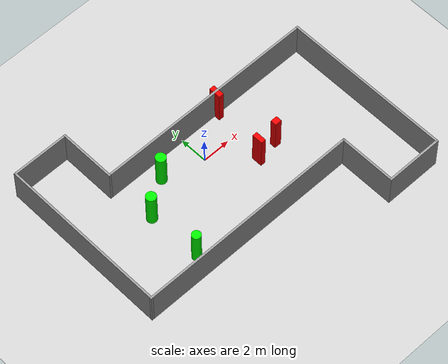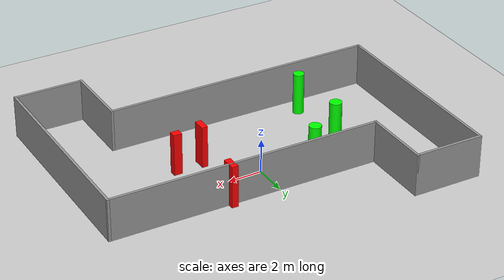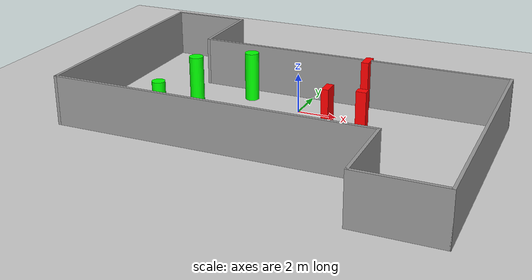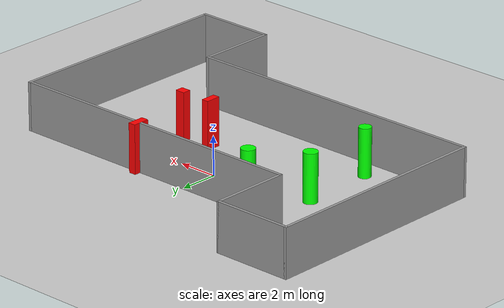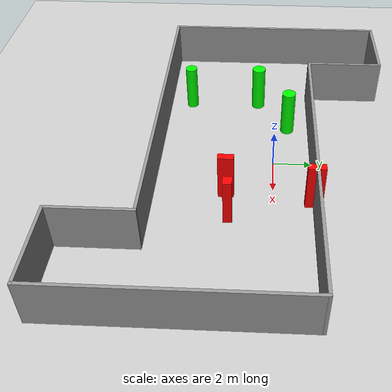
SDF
<sdf version="1.7">
 <world name="default">
  <light name="sun" type="directional">
   <pose>0 0 10 0 -0 0</pose>
   <diffuse>0.8 0.8 0.8 1</diffuse>
   <specular>0.2 0.2 0.2 1</specular>
   <attenuation>
    <range>1000</range>
    <constant>0.9</constant>
    <linear>0.01</linear>
    <quadratic>0.001</quadratic>
   </attenuation>
   <direction>-0.5 0.1 -0.9</direction>
   <spot><inner_angle>0</inner_angle><outer_angle>0</outer_angle><falloff>0</falloff></spot>
  </light>
  <model name="ground_plane">
   <static>1</static>
   <link name="link">
    <collision name="collision">
     <geometry><plane><normal>0 0 1</normal><size>100 100</size></plane></geometry>
     <surface>
      <contact><collide_bitmask>65535</collide_bitmask></contact>
      <friction><ode><mu>100</mu><mu2>50</mu2></ode></friction>
     </surface>
    </collision>
    <visual name="visual">
     <cast_shadows>0</cast_shadows>
     <geometry><plane><normal>0 0 1</normal><size>100 100</size></plane></geometry>
     <material>
      <script><uri>file://media/materials/scripts/gazebo.material</uri><name>Gazebo/Grey</name></script>
     </material>
    </visual>
   </link>
  </model>
  <gravity>0 0 -9.8</gravity>
  <magnetic_field>6e-06 2.3e-05 -4.2e-05</magnetic_field>
  <atmosphere type="adiabatic"/>
  <physics type="ode">
   <max_step_size>0.001</max_step_size>
   <real_time_factor>1</real_time_factor>
   <real_time_update_rate>1000</real_time_update_rate>
  </physics>
  <scene><ambient>0.4 0.4 0.4 1</ambient><background>0.7 0.7 0.7 1</background><shadows>1</shadows></scene>
  <spherical_coordinates>
   <surface_model>EARTH_WGS84</surface_model>
   <latitude_deg>0</latitude_deg>
   <longitude_deg>0</longitude_deg>
   <elevation>0</elevation>
   <heading_deg>0</heading_deg>
  </spherical_coordinates>
  <model name="my_base_walls">
   <link name="Wall_13">
    <collision name="Wall_13_Collision">
     <geometry><box><size>12.15 0.15 2.5</size></box></geometry>
     <pose>0 0 1.25 0 -0 0</pose>
    </collision>
    <visual name="Wall_13_Visual">
     <pose>0 0 1.25 0 -0 0</pose>
     <geometry><box><size>12.15 0.15 2.5</size></box></geometry>
     <material>
      <script><uri>file://media/materials/scripts/gazebo.material</uri><name>Gazebo/Grey</name></script>
      <ambient>1 1 1 1</ambient>
     </material>
     <meta><layer>0</layer></meta>
    </visual>
    <pose>10 -2 0 0 -0 1.5708</pose>
   </link>
   <link name="Wall_15">
    <collision name="Wall_15_Collision">
     <geometry><box><size>16.15 0.15 2.5</size></box></geometry>
     <pose>0 0 1.25 0 -0 0</pose>
    </collision>
    <visual name="Wall_15_Visual">
     <pose>0 0 1.25 0 -0 0</pose>
     <geometry><box><size>16.15 0.15 2.5</size></box></geometry>
     <material>
      <script><uri>file://media/materials/scripts/gazebo.material</uri><name>Gazebo/Grey</name></script>
      <ambient>1 1 1 1</ambient>
     </material>
     <meta><layer>0</layer></meta>
    </visual>
    <pose>2 4 0 0 -0 3.14159</pose>
   </link>
   <link name="Wall_17">
    <collision name="Wall_17_Collision">
     <geometry><box><size>4.15 0.15 2.5</size></box></geometry>
     <pose>0 0 1.25 0 -0 0</pose>
    </collision>
    <visual name="Wall_17_Visual">
     <pose>0 0 1.25 0 -0 0</pose>
     <geometry><box><size>4.15 0.15 2.5</size></box></geometry>
     <material>
      <script><uri>file://media/materials/scripts/gazebo.material</uri><name>Gazebo/Grey</name></script>
      <ambient>1 1 1 1</ambient>
     </material>
     <meta><layer>0</layer></meta>
    </visual>
    <pose>6 -6 0 0 -0 -1.5708</pose>
   </link>
   <link name="Wall_19">
    <collision name="Wall_19_Collision">
     <geometry><box><size>12.15 0.15 2.5</size></box></geometry>
     <pose>0 0 1.25 0 -0 0</pose>
    </collision>
    <visual name="Wall_19_Visual">
     <pose>0 0 1.25 0 -0 0</pose>
     <geometry><box><size>12.15 0.15 2.5</size></box></geometry>
     <material>
      <script><uri>file://media/materials/scripts/gazebo.material</uri><name>Gazebo/Grey</name></script>
      <ambient>1 1 1 1</ambient>
     </material>
     <meta><layer>0</layer></meta>
    </visual>
    <pose>-10 2 0 0 -0 1.5708</pose>
   </link>
   <link name="Wall_21">
    <collision name="Wall_21_Collision">
     <geometry><box><size>4.15 0.15 2.5</size></box></geometry>
     <pose>0 0 1.25 0 -0 0</pose>
    </collision>
    <visual name="Wall_21_Visual">
     <pose>0 0 1.25 0 -0 0</pose>
     <geometry><box><size>4.15 0.15 2.5</size></box></geometry>
     <material>
      <script><uri>file://media/materials/scripts/gazebo.material</uri><name>Gazebo/Grey</name></script>
      <ambient>1 1 1 1</ambient>
     </material>
     <meta><layer>0</layer></meta>
    </visual>
    <pose>-8 8 0 0 -0 0</pose>
   </link>
   <link name="Wall_23">
    <collision name="Wall_23_Collision">
     <geometry><box><size>4.15 0.15 2.5</size></box></geometry>
     <pose>0 0 1.25 0 -0 0</pose>
    </collision>
    <visual name="Wall_23_Visual">
     <pose>0 0 1.25 0 -0 0</pose>
     <geometry><box><size>4.15 0.15 2.5</size></box></geometry>
     <material>
      <script><uri>file://media/materials/scripts/gazebo.material</uri><name>Gazebo/Grey</name></script>
      <ambient>1 1 1 1</ambient>
     </material>
     <meta><layer>0</layer></meta>
    </visual>
    <pose>-6 6 0 0 -0 -1.5708</pose>
   </link>
   <link name="Wall_25">
    <collision name="Wall_25_Collision">
     <geometry><box><size>4.15 0.15 2.5</size></box></geometry>
     <pose>0 0 1.25 0 -0 0</pose>
    </collision>
    <visual name="Wall_25_Visual">
     <pose>0 0 1.25 0 -0 0</pose>
     <geometry><box><size>4.15 0.15 2.5</size></box></geometry>
     <material>
      <script><uri>file://media/materials/scripts/gazebo.material</uri><name>Gazebo/Grey</name></script>
      <ambient>1 1 1 1</ambient>
     </material>
     <meta><layer>0</layer></meta>
    </visual>
    <pose>8 -8 0 0 -0 0</pose>
   </link>
   <link name="Wall_9">
    <collision name="Wall_9_Collision">
     <geometry><box><size>16.15 0.15 2.5</size></box></geometry>
     <pose>0 0 1.25 0 -0 0</pose>
    </collision>
    <visual name="Wall_9_Visual">
     <pose>0 0 1.25 0 -0 0</pose>
     <geometry><box><size>16.15 0.15 2.5</size></box></geometry>
     <material>
      <script><uri>file://media/materials/scripts/gazebo.material</uri><name>Gazebo/Grey</name></script>
      <ambient>1 1 1 1</ambient>
     </material>
     <meta><layer>0</layer></meta>
    </visual>
    <pose>-2 -4 0 0 -0 3.14159</pose>
   </link>
   <static>1</static>
   <pose>-0 -2 0 0 -0 0</pose>
  </model>
  <model name="cylinder1">
   <static>1</static>
   <link name="link">
    <inertial>
     <mass>1</mass>
     <inertia><ixx>0.5</ixx><ixy>0</ixy><ixz>0</ixz><iyy>0.5</iyy><iyz>0</iyz><izz>1</izz></inertia>
    </inertial>
    <collision name="collision">
     <geometry><cylinder><radius>0.3596171790947104</radius><length>2.5</length></cylinder></geometry>
    </collision>
    <visual name="visual">
     <geometry><cylinder><radius>0.3596171790947104</radius><length>2.5</length></cylinder></geometry>
     <material>
      <ambient>0 1 0 1</ambient>
      <diffuse>0 1 0 1</diffuse>
      <specular>0.1 0.1 0.1 1</specular>
      <emissive>0 0 0 0</emissive>
     </material>
    </visual>
   </link>
   <pose>-5.236141845693171 -0.8621864842496754 1.25 0 0 0</pose>
  </model>
  <model name="cylinder2">
   <static>1</static>
   <link name="link">
    <inertial>
     <mass>1</mass>
     <inertia><ixx>0.5</ixx><ixy>0</ixy><ixz>0</ixz><iyy>0.5</iyy><iyz>0</iyz><izz>1</izz></inertia>
    </inertial>
    <collision name="collision">
     <geometry><cylinder><radius>0.3162734854810112</radius><length>2.5</length></cylinder></geometry>
    </collision>
    <visual name="visual">
     <geometry><cylinder><radius>0.3162734854810112</radius><length>2.5</length></cylinder></geometry>
     <material>
      <ambient>0 1 0 1</ambient>
      <diffuse>0 1 0 1</diffuse>
      <specular>0.1 0.1 0.1 1</specular>
      <emissive>0 0 0 0</emissive>
     </material>
    </visual>
   </link>
   <pose>-5.149182615907057 -4.700829089169658 1.25 0 0 0</pose>
  </model>
  <model name="cylinder3">
   <static>1</static>
   <link name="link">
    <inertial>
     <mass>1</mass>
     <inertia><ixx>0.5</ixx><ixy>0</ixy><ixz>0</ixz><iyy>0.5</iyy><iyz>0</iyz><izz>1</izz></inertia>
    </inertial>
    <collision name="collision">
     <geometry><cylinder><radius>0.3591307552102161</radius><length>2.5</length></cylinder></geometry>
    </collision>
    <visual name="visual">
     <geometry><cylinder><radius>0.3591307552102161</radius><length>2.5</length></cylinder></geometry>
     <material>
      <ambient>0 1 0 1</ambient>
      <diffuse>0 1 0 1</diffuse>
      <specular>0.1 0.1 0.1 1</specular>
      <emissive>0 0 0 0</emissive>
     </material>
    </visual>
   </link>
   <pose>-2.9013496256238245 0.7823406727084388 1.25 0 0 0</pose>
  </model>
  <model name="box1">
   <static>1</static>
   <link name="link">
    <inertial>
     <mass>1</mass>
     <inertia><ixx>0.083</ixx><ixy>0</ixy><ixz>0</ixz><iyy>0.083</iyy><iyz>0</iyz><izz>0.083</izz></inertia>
    </inertial>
    <collision name="collision">
     <geometry><box><size>0.353477434153474 0.7799165295646925 2.5</size></box></geometry>
    </collision>
    <visual name="visual">
     <geometry><box><size>0.353477434153474 0.7799165295646925 2.5</size></box></geometry>
     <material>
      <ambient>1 0 0 1</ambient>
      <diffuse>1 0 0 1</diffuse>
      <specular>0.1 0.1 0.1 1</specular>
      <emissive>0 0 0 0</emissive>
     </material>
    </visual>
    <sensor name="my_contact" type="contact">
     <contact><collision>box_collision</collision><topic>__default_topic__</topic></contact>
    </sensor>
   </link>
   <pose>2.3904149466250058 -2.327035767675337 1.25 0 0 0</pose>
  </model>
  <model name="box2">
   <static>1</static>
   <link name="link">
    <inertial>
     <mass>1</mass>
     <inertia><ixx>0.083</ixx><ixy>0</ixy><ixz>0</ixz><iyy>0.083</iyy><iyz>0</iyz><izz>0.083</izz></inertia>
    </inertial>
    <collision name="collision">
     <geometry><box><size>0.4954654796999578 0.42866991235854884 2.5</size></box></geometry>
    </collision>
    <visual name="visual">
     <geometry><box><size>0.4954654796999578 0.42866991235854884 2.5</size></box></geometry>
     <material>
      <ambient>1 0 0 1</ambient>
      <diffuse>1 0 0 1</diffuse>
      <specular>0.1 0.1 0.1 1</specular>
      <emissive>0 0 0 0</emissive>
     </material>
    </visual>
    <sensor name="my_contact" type="contact">
     <contact><collision>box_collision</collision><topic>__default_topic__</topic></contact>
    </sensor>
   </link>
   <pose>4.015112331090689 -2.1587948724116073 1.25 0 0 0</pose>
  </model>
  <model name="box3">
   <static>1</static>
   <link name="link">
    <inertial>
     <mass>1</mass>
     <inertia><ixx>0.083</ixx><ixy>0</ixy><ixz>0</ixz><iyy>0.083</iyy><iyz>0</iyz><izz>0.083</izz></inertia>
    </inertial>
    <collision name="collision">
     <geometry><box><size>0.37936802907082945 0.8695996589670709 2.5</size></box></geometry>
    </collision>
    <visual name="visual">
     <geometry><box><size>0.37936802907082945 0.8695996589670709 2.5</size></box></geometry>
     <material>
      <ambient>1 0 0 1</ambient>
      <diffuse>1 0 0 1</diffuse>
      <specular>0.1 0.1 0.1 1</specular>
      <emissive>0 0 0 0</emissive>
     </material>
    </visual>
    <sensor name="my_contact" type="contact">
     <contact><collision>box_collision</collision><topic>__default_topic__</topic></contact>
    </sensor>
   </link>
   <pose>2.91745821372435 1.954979132696061 1.25 0 0 0</pose>
  </model>
 </world>
</sdf>
